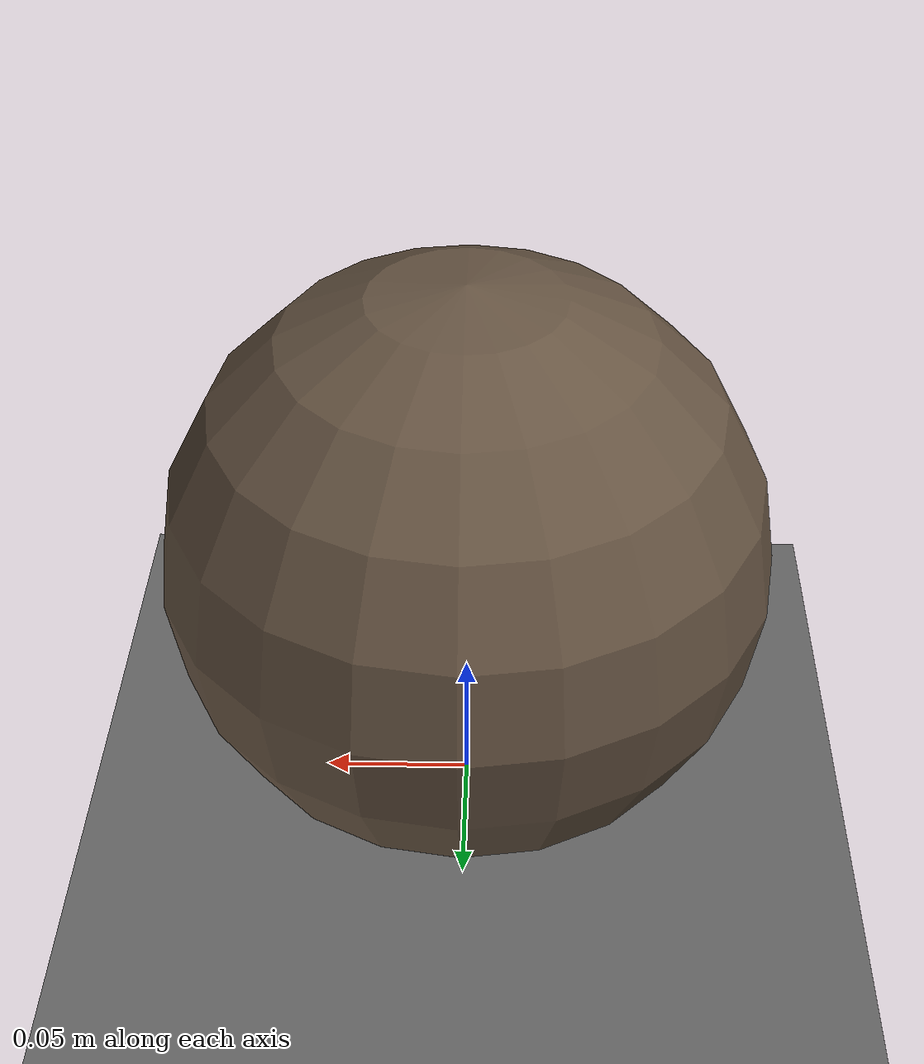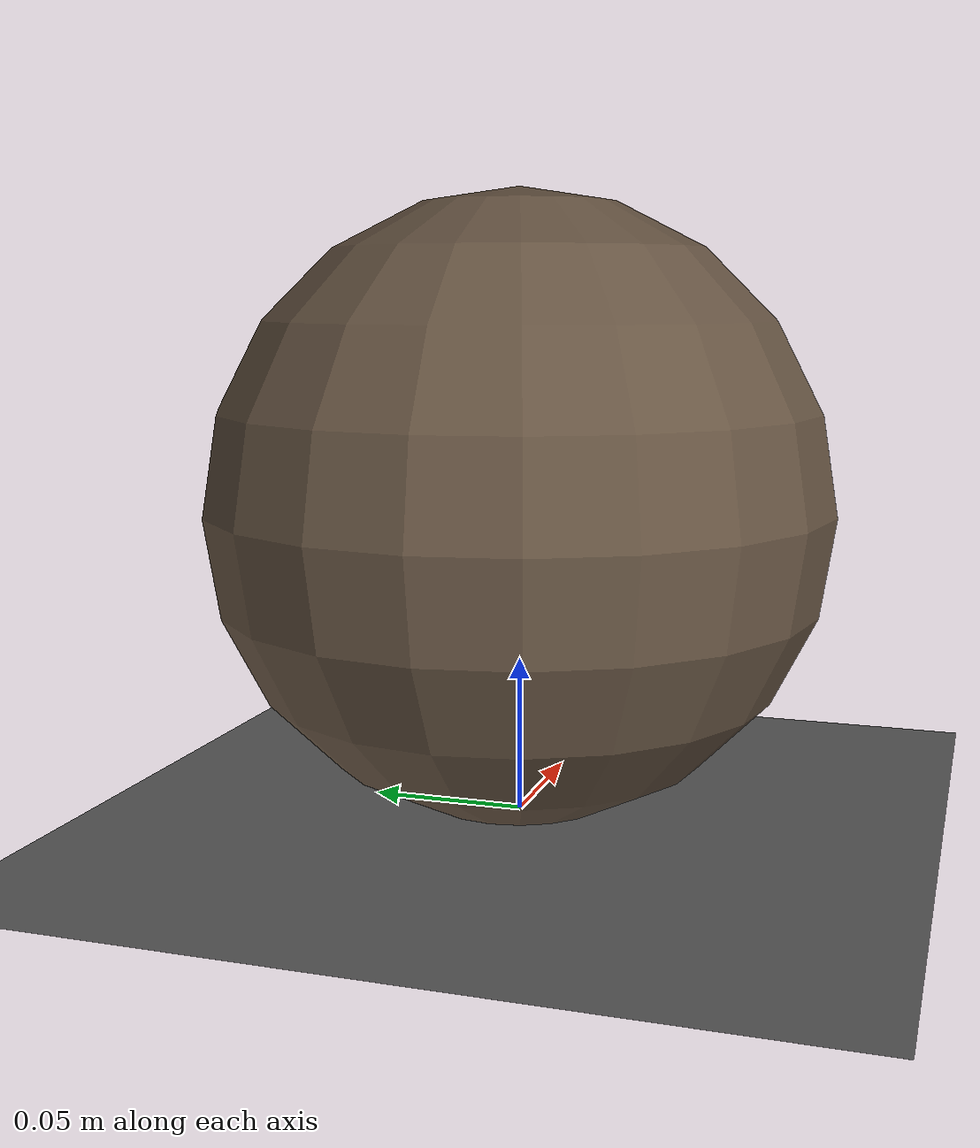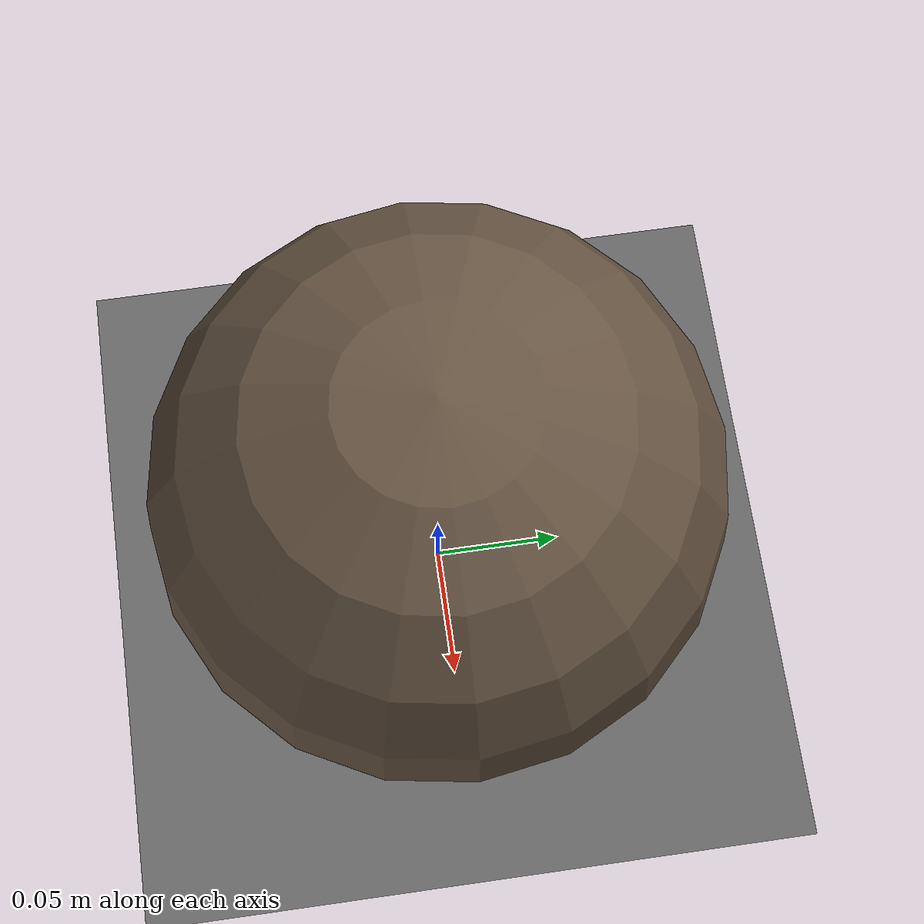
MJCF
<mujoco model="xy_point">
  <compiler angle="radian" inertiafromgeom="true"/>
  <default>
    <joint armature="1" limited="true"/>
    <geom conaffinity="0" contype="0" friction="1 0.1 0.1" rgba="0.4 0.33 0.26 1.0"/>
  </default>
  <!-- Removed RK4 integrator for brax. -->
  <option gravity="0 0 -9.81" timestep="0.01" />
  <custom>
    <!-- brax custom params -->
    <numeric data="0 0" name="init_qpos"/>
    <numeric data="1000" name="constraint_stiffness"/>
    <numeric data="1000" name="constraint_limit_stiffness"/>
    <numeric data="3" name="constraint_vel_damping"/>
    <numeric data="0.1" name="constraint_ang_damping"/>
    <numeric data="0.0" name="ang_damping"/>
    <numeric data="0" name="spring_mass_scale"/>
    <numeric data="1" name="spring_inertia_scale"/>
    <numeric data="5" name="solver_maxls"/>
  </custom>
  <asset>
    <texture builtin="gradient" height="100" rgb1="1 1 1" rgb2="0 0 0" type="skybox" width="100"/>
    <texture builtin="flat" height="1278" mark="cross" markrgb="1 1 1" name="texgeom" random="0.01" rgb1="0.8 0.6 0.4" rgb2="0.8 0.6 0.4" type="cube" width="127"/>
    <texture builtin="checker" height="100" name="texplane" rgb1="0 0 0" rgb2="0.8 0.8 0.8" type="2d" width="100"/>
    <material name="MatPlane" reflectance="0.5" shininess="1" specular="1" texrepeat="60 60" texture="texplane"/>
    <material name="geom" texture="texgeom" texuniform="true"/>
  </asset>
  <worldbody>
    <light diffuse=".5 .5 .5" pos="0 0 3" dir="0 0 -1"/>
    <camera name="overview" pos="0 -5 2" xyaxes="1 0 0 0 .4 1" fovy="90"/>
    <!-- Arena -->
    <geom conaffinity="0" contype="0" material="MatPlane" name="ground" pos="0 0 0" size="5 5 0.1" type="plane" rgba="0.5 0.5 0.5 1.0"/>
    <!-- Arm -->
    <body name="robot" pos="0 0 .1">
      <camera name="track" mode="trackcom" pos="0 -3 0.3" xyaxes="1 0 0 0 0 1"/>
      <geom name="torso" type="sphere" size=".1" friction="1 0.1 0.1"/>
      <joint axis="1 0 0" limited="false" name="x" damping="2" frictionloss="0.5" type="slide"/>
      <joint axis="0 1 0" limited="false" name="y" damping="2" frictionloss="0.5" type="slide"/>
    </body>
  </worldbody>
  <actuator>
    <motor ctrllimited="true" ctrlrange="-1.0 1.0" gear="10.0" joint="x"/>
    <motor ctrllimited="true" ctrlrange="-1.0 1.0" gear="10.0" joint="y"/>
  </actuator>
</mujoco>
